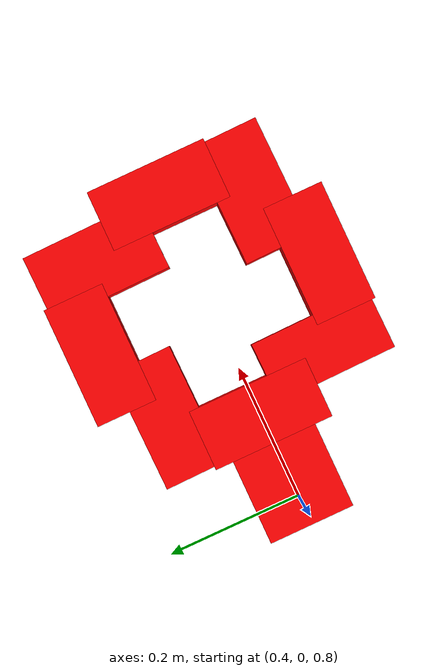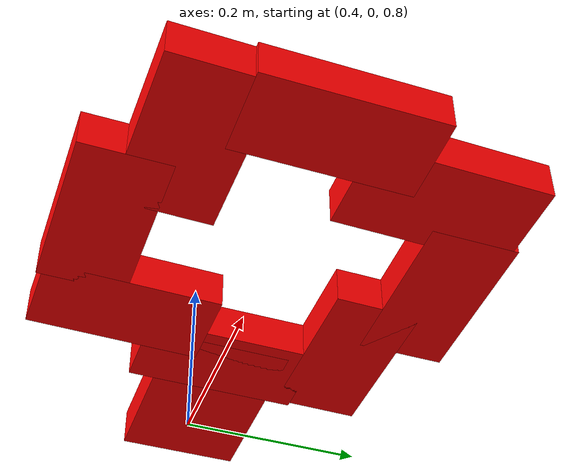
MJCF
<mujoco model="round-nut">
  <asset>
    <texture file="../textures/metal.png" name="tex-metal" type="2d" />
    <material name="metal" reflectance="0.7" texrepeat="1 1" texture="tex-metal" texuniform="true" />
  </asset>
  <worldbody>

      <body name="object0" pos="0.7 0.0 0.81">
        <joint damping="0.1" limited="false" name="object0:joint" type="free" />
        <geom condim="4" density="100" friction="0.95 0.3 0.1" group="1" name="object0" pos="-0.1698 0.0 0.0" rgba="1 0 0 1" size="0.045 0.09 0.02" solimp="0.998 0.998 0.001" solref="0.02 1" type="box" />
        <geom condim="4" density="100" friction="0.95 0.3 0.1" group="1" name="object1" pos="0.1698 0.0 0.0" rgba="1 0 0 1" size="0.045 0.09 0.02" solimp="0.998 0.998 0.001" solref="0.02 1" type="box" />
        <geom condim="4" density="100" friction="0.95 0.3 0.1" group="1" name="object2" pos="0.0 -0.1698 0.0" rgba="1 0 0 1" size="0.09 0.045 0.02" solimp="0.998 0.998 0.001" solref="0.02 1" type="box" />
        <geom condim="4" density="100" friction="0.95 0.3 0.1" group="1" name="object3" pos="0.0 0.1698 0.0" rgba="1 0 0 1" size="0.09 0.045 0.02" solimp="0.998 0.998 0.001" solref="0.02 1" type="box" />
        <geom axisangle="0 0 1 0.785398" condim="4" density="100" friction="0.95 0.3 0.1" group="1" name="object4" pos="-0.12 -0.12 0.0" rgba="1 0 0 1" size="0.045 0.09 0.02" solimp="0.998 0.998 0.001" solref="0.02 1" type="box" />
        <geom axisangle="0 0 1 0.785398" condim="4" density="100" friction="0.95 0.3 0.1" group="1" name="object5" pos="0.12 0.12 0.0" rgba="1 0 0 1" size="0.05 0.09 0.02" solimp="0.998 0.998 0.001" solref="0.02 1" type="box" />
        <geom axisangle="0 0 1 0.785398" condim="4" density="100" friction="0.95 0.3 0.1" group="1" name="object6" pos="0.12 -0.12 0.0" rgba="1 0 0 1" size="0.09 0.05 0.02" solimp="0.998 0.998 0.001" solref="0.02 1" type="box" />
        <geom axisangle="0 0 1 0.785398" condim="4" density="100" friction="0.95 0.3 0.1" group="1" name="object7" pos="-0.12 0.12 0.0" rgba="1 0 0 1" size="0.09 0.045 0.02" solimp="0.998 0.998 0.001" solref="0.02 1" type="box" />
        <geom condim="4" density="100" friction="0.95 0.3 0.1" group="1" name="object8" pos="-0.24 0.0 0.0" rgba="1 0 0 1" size="0.101 0.0635 0.02" solimp="0.998 0.998 0.001" solref="0.02 1" type="box" />
      </body>

  </worldbody>
</mujoco>
